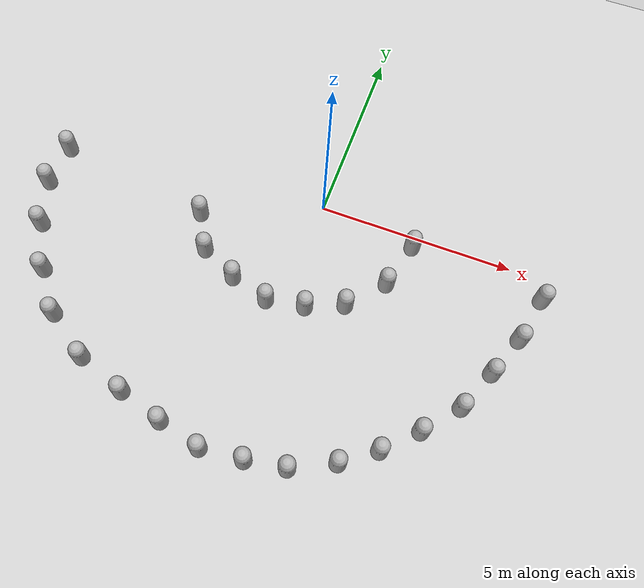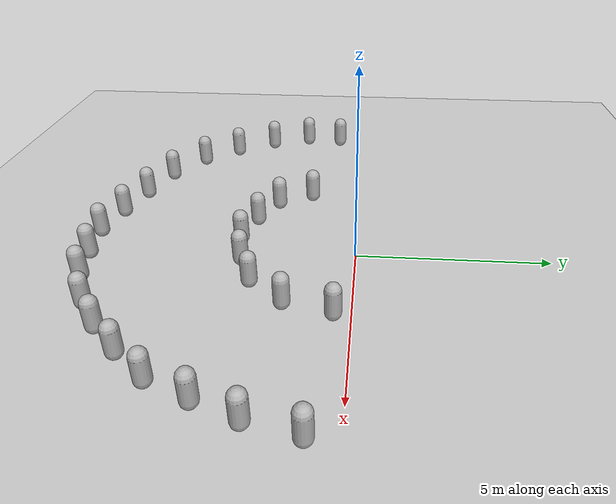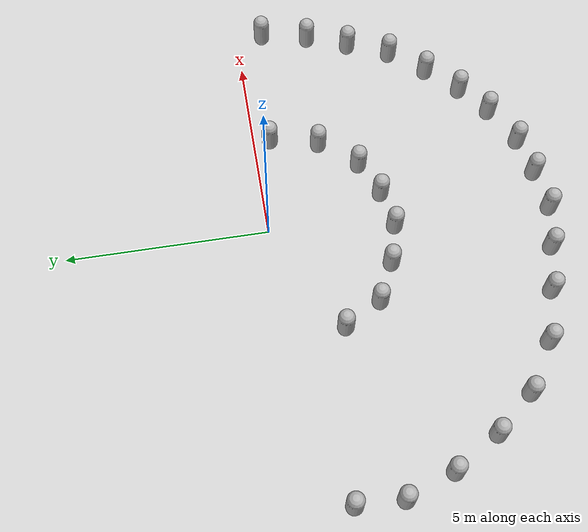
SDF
<sdf version="1.10">
 <world name="empty">
  <model name="ground_plane">
   <static>true</static>
   <link name="link">
    <collision name="collision">
     <geometry><plane><normal>0 0 1</normal><size>100 100</size></plane></geometry>
    </collision>
    <visual name="visual">
     <geometry><plane><normal>0 0 1</normal><size>100 100</size></plane></geometry>
     <material>
      <ambient>0.800000012 0.800000012 0.800000012 1</ambient>
      <diffuse>0.800000012 0.800000012 0.800000012 1</diffuse>
      <specular>0.800000012 0.800000012 0.800000012 1</specular>
     </material>
    </visual>
    <inertial>
     <mass>1</mass>
     <inertia><ixx>1</ixx><ixy>0</ixy><ixz>0</ixz><iyy>1</iyy><iyz>0</iyz><izz>1</izz></inertia>
    </inertial>
   </link>
  </model>
  <model name="capsule_7">
   <pose>2.5081237369553318 -0.40256186829092999 0.499999999902001 0 0 0</pose>
   <link name="capsule_link">
    <inertial>
     <inertia>
      <ixx>0.074153999999999998</ixx>
      <ixy>0</ixy>
      <ixz>0</ixz>
      <iyy>0.074153999999999998</iyy>
      <iyz>0</iyz>
      <izz>0.018769000000000001</izz>
     </inertia>
     <mass>1</mass>
    </inertial>
    <collision name="capsule_collision">
     <geometry>
      <capsule><radius>0.20000000000000001</radius><length>0.59999999999999998</length></capsule>
     </geometry>
    </collision>
    <visual name="capsule_visual">
     <geometry>
      <capsule><radius>0.20000000000000001</radius><length>0.59999999999999998</length></capsule>
     </geometry>
     <material>
      <ambient>0.300000012 0.300000012 0.300000012 1</ambient>
      <diffuse>0.699999988 0.699999988 0.699999988 1</diffuse>
      <specular>1 1 1 1</specular>
     </material>
    </visual>
   </link>
   <static>false</static>
  </model>
  <model name="capsule_8">
   <pose>2.2048039647659095 -1.6051857225137134 0.499999999902001 0 0 0</pose>
   <link name="capsule_link">
    <inertial>
     <inertia>
      <ixx>0.074153999999999998</ixx>
      <ixy>0</ixy>
      <ixz>0</ixz>
      <iyy>0.074153999999999998</iyy>
      <iyz>0</iyz>
      <izz>0.018769000000000001</izz>
     </inertia>
     <mass>1</mass>
    </inertial>
    <collision name="capsule_collision">
     <geometry>
      <capsule><radius>0.20000000000000001</radius><length>0.59999999999999998</length></capsule>
     </geometry>
    </collision>
    <visual name="capsule_visual">
     <geometry>
      <capsule><radius>0.20000000000000001</radius><length>0.59999999999999998</length></capsule>
     </geometry>
     <material>
      <ambient>0.300000012 0.300000012 0.300000012 1</ambient>
      <diffuse>0.699999988 0.699999988 0.699999988 1</diffuse>
      <specular>1 1 1 1</specular>
     </material>
    </visual>
   </link>
   <static>false</static>
  </model>
  <model name="capsule_9">
   <pose>1.4364847972980179 -2.5017014589598041 0.499999999902001 0 0 0</pose>
   <link name="capsule_link">
    <inertial>
     <inertia>
      <ixx>0.074153999999999998</ixx>
      <ixy>0</ixy>
      <ixz>0</ixz>
      <iyy>0.074153999999999998</iyy>
      <iyz>0</iyz>
      <izz>0.018769000000000001</izz>
     </inertia>
     <mass>1</mass>
    </inertial>
    <collision name="capsule_collision">
     <geometry>
      <capsule><radius>0.20000000000000001</radius><length>0.59999999999999998</length></capsule>
     </geometry>
    </collision>
    <visual name="capsule_visual">
     <geometry>
      <capsule><radius>0.20000000000000001</radius><length>0.59999999999999998</length></capsule>
     </geometry>
     <material>
      <ambient>0.300000012 0.300000012 0.300000012 1</ambient>
      <diffuse>0.699999988 0.699999988 0.699999988 1</diffuse>
      <specular>1 1 1 1</specular>
     </material>
    </visual>
   </link>
   <static>false</static>
  </model>
  <model name="capsule_10">
   <pose>0.52965274919056426 -2.889087828473337 0.499999999902001 0 0 0</pose>
   <link name="capsule_link">
    <inertial>
     <inertia>
      <ixx>0.074153999999999998</ixx>
      <ixy>0</ixy>
      <ixz>0</ixz>
      <iyy>0.074153999999999998</iyy>
      <iyz>0</iyz>
      <izz>0.018769000000000001</izz>
     </inertia>
     <mass>1</mass>
    </inertial>
    <collision name="capsule_collision">
     <geometry>
      <capsule><radius>0.20000000000000001</radius><length>0.59999999999999998</length></capsule>
     </geometry>
    </collision>
    <visual name="capsule_visual">
     <geometry>
      <capsule><radius>0.20000000000000001</radius><length>0.59999999999999998</length></capsule>
     </geometry>
     <material>
      <ambient>0.300000012 0.300000012 0.300000012 1</ambient>
      <diffuse>0.699999988 0.699999988 0.699999988 1</diffuse>
      <specular>1 1 1 1</specular>
     </material>
    </visual>
   </link>
   <static>false</static>
  </model>
  <model name="capsule_11">
   <pose>-0.42732762866995855 -3.0541834084289334 0.499999999902001 0 0 0</pose>
   <link name="capsule_link">
    <inertial>
     <inertia>
      <ixx>0.074153999999999998</ixx>
      <ixy>0</ixy>
      <ixz>0</ixz>
      <iyy>0.074153999999999998</iyy>
      <iyz>0</iyz>
      <izz>0.018769000000000001</izz>
     </inertia>
     <mass>1</mass>
    </inertial>
    <collision name="capsule_collision">
     <geometry>
      <capsule><radius>0.20000000000000001</radius><length>0.59999999999999998</length></capsule>
     </geometry>
    </collision>
    <visual name="capsule_visual">
     <geometry>
      <capsule><radius>0.20000000000000001</radius><length>0.59999999999999998</length></capsule>
     </geometry>
     <material>
      <ambient>0.300000012 0.300000012 0.300000012 1</ambient>
      <diffuse>0.699999988 0.699999988 0.699999988 1</diffuse>
      <specular>1 1 1 1</specular>
     </material>
    </visual>
   </link>
   <static>false</static>
  </model>
  <model name="capsule_12">
   <pose>-1.412462021727606 -2.771493541628725 0.499999999902001 0 0 0</pose>
   <link name="capsule_link">
    <inertial>
     <inertia>
      <ixx>0.074153999999999998</ixx>
      <ixy>0</ixy>
      <ixz>0</ixz>
      <iyy>0.074153999999999998</iyy>
      <iyz>0</iyz>
      <izz>0.018769000000000001</izz>
     </inertia>
     <mass>1</mass>
    </inertial>
    <collision name="capsule_collision">
     <geometry>
      <capsule><radius>0.20000000000000001</radius><length>0.59999999999999998</length></capsule>
     </geometry>
    </collision>
    <visual name="capsule_visual">
     <geometry>
      <capsule><radius>0.20000000000000001</radius><length>0.59999999999999998</length></capsule>
     </geometry>
     <material>
      <ambient>0.300000012 0.300000012 0.300000012 1</ambient>
      <diffuse>0.699999988 0.699999988 0.699999988 1</diffuse>
      <specular>1 1 1 1</specular>
     </material>
    </visual>
   </link>
   <static>false</static>
  </model>
  <model name="capsule_13">
   <pose>-2.3582422750878735 -2.3076069870458138 0.499999999902001 0 0 0</pose>
   <link name="capsule_link">
    <inertial>
     <inertia>
      <ixx>0.074153999999999998</ixx>
      <ixy>0</ixy>
      <ixz>0</ixz>
      <iyy>0.074153999999999998</iyy>
      <iyz>0</iyz>
      <izz>0.018769000000000001</izz>
     </inertia>
     <mass>1</mass>
    </inertial>
    <collision name="capsule_collision">
     <geometry>
      <capsule><radius>0.20000000000000001</radius><length>0.59999999999999998</length></capsule>
     </geometry>
    </collision>
    <visual name="capsule_visual">
     <geometry>
      <capsule><radius>0.20000000000000001</radius><length>0.59999999999999998</length></capsule>
     </geometry>
     <material>
      <ambient>0.300000012 0.300000012 0.300000012 1</ambient>
      <diffuse>0.699999988 0.699999988 0.699999988 1</diffuse>
      <specular>1 1 1 1</specular>
     </material>
    </visual>
   </link>
   <static>false</static>
  </model>
  <model name="capsule_14">
   <pose>-2.8809645542281865 -1.3882365457247086 0.499999999902001 0 0 0</pose>
   <link name="capsule_link">
    <inertial>
     <inertia>
      <ixx>0.074153999999999998</ixx>
      <ixy>0</ixy>
      <ixz>0</ixz>
      <iyy>0.074153999999999998</iyy>
      <iyz>0</iyz>
      <izz>0.018769000000000001</izz>
     </inertia>
     <mass>1</mass>
    </inertial>
    <collision name="capsule_collision">
     <geometry>
      <capsule><radius>0.20000000000000001</radius><length>0.59999999999999998</length></capsule>
     </geometry>
    </collision>
    <visual name="capsule_visual">
     <geometry>
      <capsule><radius>0.20000000000000001</radius><length>0.59999999999999998</length></capsule>
     </geometry>
     <material>
      <ambient>0.300000012 0.300000012 0.300000012 1</ambient>
      <diffuse>0.699999988 0.699999988 0.699999988 1</diffuse>
      <specular>1 1 1 1</specular>
     </material>
    </visual>
   </link>
   <static>false</static>
  </model>
  <model name="capsule_15">
   <pose>-0.52190809012316919 -6.9308206823025076 0.499999999902001 0 0 0</pose>
   <link name="capsule_link">
    <inertial>
     <inertia>
      <ixx>0.074153999999999998</ixx>
      <ixy>0</ixy>
      <ixz>0</ixz>
      <iyy>0.074153999999999998</iyy>
      <iyz>0</iyz>
      <izz>0.018769000000000001</izz>
     </inertia>
     <mass>1</mass>
    </inertial>
    <collision name="capsule_collision">
     <geometry>
      <capsule><radius>0.20000000000000001</radius><length>0.59999999999999998</length></capsule>
     </geometry>
    </collision>
    <visual name="capsule_visual">
     <geometry>
      <capsule><radius>0.20000000000000001</radius><length>0.59999999999999998</length></capsule>
     </geometry>
     <material>
      <ambient>0.300000012 0.300000012 0.300000012 1</ambient>
      <diffuse>0.699999988 0.699999988 0.699999988 1</diffuse>
      <specular>1 1 1 1</specular>
     </material>
    </visual>
   </link>
   <static>false</static>
  </model>
  <model name="capsule_16">
   <pose>0.5242768551353354 -6.8207512376048962 0.499999999902001 0 0 0</pose>
   <link name="capsule_link">
    <inertial>
     <inertia>
      <ixx>0.074153999999999998</ixx>
      <ixy>0</ixy>
      <ixz>0</ixz>
      <iyy>0.074153999999999998</iyy>
      <iyz>0</iyz>
      <izz>0.018769000000000001</izz>
     </inertia>
     <mass>1</mass>
    </inertial>
    <collision name="capsule_collision">
     <geometry>
      <capsule><radius>0.20000000000000001</radius><length>0.59999999999999998</length></capsule>
     </geometry>
    </collision>
    <visual name="capsule_visual">
     <geometry>
      <capsule><radius>0.20000000000000001</radius><length>0.59999999999999998</length></capsule>
     </geometry>
     <material>
      <ambient>0.300000012 0.300000012 0.300000012 1</ambient>
      <diffuse>0.699999988 0.699999988 0.699999988 1</diffuse>
      <specular>1 1 1 1</specular>
     </material>
    </visual>
   </link>
   <static>false</static>
  </model>
  <model name="capsule_17">
   <pose>1.4986333872438493 -6.6472010452156054 0.499999999902001 0 0 0</pose>
   <link name="capsule_link">
    <inertial>
     <inertia>
      <ixx>0.074153999999999998</ixx>
      <ixy>0</ixy>
      <ixz>0</ixz>
      <iyy>0.074153999999999998</iyy>
      <iyz>0</iyz>
      <izz>0.018769000000000001</izz>
     </inertia>
     <mass>1</mass>
    </inertial>
    <collision name="capsule_collision">
     <geometry>
      <capsule><radius>0.20000000000000001</radius><length>0.59999999999999998</length></capsule>
     </geometry>
    </collision>
    <visual name="capsule_visual">
     <geometry>
      <capsule><radius>0.20000000000000001</radius><length>0.59999999999999998</length></capsule>
     </geometry>
     <material>
      <ambient>0.300000012 0.300000012 0.300000012 1</ambient>
      <diffuse>0.699999988 0.699999988 0.699999988 1</diffuse>
      <specular>1 1 1 1</specular>
     </material>
    </visual>
   </link>
   <static>false</static>
  </model>
  <model name="capsule_18">
   <pose>2.5117566383249121 -6.1404921635000269 0.499999999902001 0 0 0</pose>
   <link name="capsule_link">
    <inertial>
     <inertia>
      <ixx>0.074153999999999998</ixx>
      <ixy>0</ixy>
      <ixz>0</ixz>
      <iyy>0.074153999999999998</iyy>
      <iyz>0</iyz>
      <izz>0.018769000000000001</izz>
     </inertia>
     <mass>1</mass>
    </inertial>
    <collision name="capsule_collision">
     <geometry>
      <capsule><radius>0.20000000000000001</radius><length>0.59999999999999998</length></capsule>
     </geometry>
    </collision>
    <visual name="capsule_visual">
     <geometry>
      <capsule><radius>0.20000000000000001</radius><length>0.59999999999999998</length></capsule>
     </geometry>
     <material>
      <ambient>0.300000012 0.300000012 0.300000012 1</ambient>
      <diffuse>0.699999988 0.699999988 0.699999988 1</diffuse>
      <specular>1 1 1 1</specular>
     </material>
    </visual>
   </link>
   <static>false</static>
  </model>
  <model name="capsule_19">
   <pose>-1.5973082557714307 -6.6819365596943676 0.499999999902001 0 0 0</pose>
   <link name="capsule_link">
    <inertial>
     <inertia>
      <ixx>0.074153999999999998</ixx>
      <ixy>0</ixy>
      <ixz>0</ixz>
      <iyy>0.074153999999999998</iyy>
      <iyz>0</iyz>
      <izz>0.018769000000000001</izz>
     </inertia>
     <mass>1</mass>
    </inertial>
    <collision name="capsule_collision">
     <geometry>
      <capsule><radius>0.20000000000000001</radius><length>0.59999999999999998</length></capsule>
     </geometry>
    </collision>
    <visual name="capsule_visual">
     <geometry>
      <capsule><radius>0.20000000000000001</radius><length>0.59999999999999998</length></capsule>
     </geometry>
     <material>
      <ambient>0.300000012 0.300000012 0.300000012 1</ambient>
      <diffuse>0.699999988 0.699999988 0.699999988 1</diffuse>
      <specular>1 1 1 1</specular>
     </material>
    </visual>
   </link>
   <static>false</static>
  </model>
  <model name="capsule_20">
   <pose>-2.7239246104988029 -6.3645904060277978 0.499999999902001 0 0 0</pose>
   <link name="capsule_link">
    <inertial>
     <inertia>
      <ixx>0.074153999999999998</ixx>
      <ixy>0</ixy>
      <ixz>0</ixz>
      <iyy>0.074153999999999998</iyy>
      <iyz>0</iyz>
      <izz>0.018769000000000001</izz>
     </inertia>
     <mass>1</mass>
    </inertial>
    <collision name="capsule_collision">
     <geometry>
      <capsule><radius>0.20000000000000001</radius><length>0.59999999999999998</length></capsule>
     </geometry>
    </collision>
    <visual name="capsule_visual">
     <geometry>
      <capsule><radius>0.20000000000000001</radius><length>0.59999999999999998</length></capsule>
     </geometry>
     <material>
      <ambient>0.300000012 0.300000012 0.300000012 1</ambient>
      <diffuse>0.699999988 0.699999988 0.699999988 1</diffuse>
      <specular>1 1 1 1</specular>
     </material>
    </visual>
   </link>
   <static>false</static>
  </model>
  <model name="capsule_21">
   <pose>-3.9697708528088875 -5.9554399215768026 0.499999999902001 0 0 0</pose>
   <link name="capsule_link">
    <inertial>
     <inertia>
      <ixx>0.074153999999999998</ixx>
      <ixy>0</ixy>
      <ixz>0</ixz>
      <iyy>0.074153999999999998</iyy>
      <iyz>0</iyz>
      <izz>0.018769000000000001</izz>
     </inertia>
     <mass>1</mass>
    </inertial>
    <collision name="capsule_collision">
     <geometry>
      <capsule><radius>0.20000000000000001</radius><length>0.59999999999999998</length></capsule>
     </geometry>
    </collision>
    <visual name="capsule_visual">
     <geometry>
      <capsule><radius>0.20000000000000001</radius><length>0.59999999999999998</length></capsule>
     </geometry>
     <material>
      <ambient>0.300000012 0.300000012 0.300000012 1</ambient>
      <diffuse>0.699999988 0.699999988 0.699999988 1</diffuse>
      <specular>1 1 1 1</specular>
     </material>
    </visual>
   </link>
   <static>false</static>
  </model>
  <model name="capsule_22">
   <pose>-5.111247680605663 -5.2050282603639122 0.499999999902001 0 0 0</pose>
   <link name="capsule_link">
    <inertial>
     <inertia>
      <ixx>0.074153999999999998</ixx>
      <ixy>0</ixy>
      <ixz>0</ixz>
      <iyy>0.074153999999999998</iyy>
      <iyz>0</iyz>
      <izz>0.018769000000000001</izz>
     </inertia>
     <mass>1</mass>
    </inertial>
    <collision name="capsule_collision">
     <geometry>
      <capsule><radius>0.20000000000000001</radius><length>0.59999999999999998</length></capsule>
     </geometry>
    </collision>
    <visual name="capsule_visual">
     <geometry>
      <capsule><radius>0.20000000000000001</radius><length>0.59999999999999998</length></capsule>
     </geometry>
     <material>
      <ambient>0.300000012 0.300000012 0.300000012 1</ambient>
      <diffuse>0.699999988 0.699999988 0.699999988 1</diffuse>
      <specular>1 1 1 1</specular>
     </material>
    </visual>
   </link>
   <static>false</static>
  </model>
  <model name="capsule_23">
   <pose>-5.91600440430057 -4.2410612859261612 0.499999999902001 0 0 0</pose>
   <link name="capsule_link">
    <inertial>
     <inertia>
      <ixx>0.074153999999999998</ixx>
      <ixy>0</ixy>
      <ixz>0</ixz>
      <iyy>0.074153999999999998</iyy>
      <iyz>0</iyz>
      <izz>0.018769000000000001</izz>
     </inertia>
     <mass>1</mass>
    </inertial>
    <collision name="capsule_collision">
     <geometry>
      <capsule><radius>0.20000000000000001</radius><length>0.59999999999999998</length></capsule>
     </geometry>
    </collision>
    <visual name="capsule_visual">
     <geometry>
      <capsule><radius>0.20000000000000001</radius><length>0.59999999999999998</length></capsule>
     </geometry>
     <material>
      <ambient>0.300000012 0.300000012 0.300000012 1</ambient>
      <diffuse>0.699999988 0.699999988 0.699999988 1</diffuse>
      <specular>1 1 1 1</specular>
     </material>
    </visual>
   </link>
   <static>false</static>
  </model>
  <model name="capsule_24">
   <pose>-6.5848813897281131 -3.1125606925663143 0.499999999902001 0 0 0</pose>
   <link name="capsule_link">
    <inertial>
     <inertia>
      <ixx>0.074153999999999998</ixx>
      <ixy>0</ixy>
      <ixz>0</ixz>
      <iyy>0.074153999999999998</iyy>
      <iyz>0</iyz>
      <izz>0.018769000000000001</izz>
     </inertia>
     <mass>1</mass>
    </inertial>
    <collision name="capsule_collision">
     <geometry>
      <capsule><radius>0.20000000000000001</radius><length>0.59999999999999998</length></capsule>
     </geometry>
    </collision>
    <visual name="capsule_visual">
     <geometry>
      <capsule><radius>0.20000000000000001</radius><length>0.59999999999999998</length></capsule>
     </geometry>
     <material>
      <ambient>0.300000012 0.300000012 0.300000012 1</ambient>
      <diffuse>0.699999988 0.699999988 0.699999988 1</diffuse>
      <specular>1 1 1 1</specular>
     </material>
    </visual>
   </link>
   <static>false</static>
  </model>
  <model name="capsule_25">
   <pose>3.2987848128661099 -5.5489754287186059 0.499999999902001 0 0 0</pose>
   <link name="capsule_link">
    <inertial>
     <inertia>
      <ixx>0.074153999999999998</ixx>
      <ixy>0</ixy>
      <ixz>0</ixz>
      <iyy>0.074153999999999998</iyy>
      <iyz>0</iyz>
      <izz>0.018769000000000001</izz>
     </inertia>
     <mass>1</mass>
    </inertial>
    <collision name="capsule_collision">
     <geometry>
      <capsule><radius>0.20000000000000001</radius><length>0.59999999999999998</length></capsule>
     </geometry>
    </collision>
    <visual name="capsule_visual">
     <geometry>
      <capsule><radius>0.20000000000000001</radius><length>0.59999999999999998</length></capsule>
     </geometry>
     <material>
      <ambient>0.300000012 0.300000012 0.300000012 1</ambient>
      <diffuse>0.699999988 0.699999988 0.699999988 1</diffuse>
      <specular>1 1 1 1</specular>
     </material>
    </visual>
   </link>
   <static>false</static>
  </model>
  <model name="capsule_26">
   <pose>4.040166005629632 -4.8067816154089931 0.499999999902001 0 0 0</pose>
   <link name="capsule_link">
    <inertial>
     <inertia>
      <ixx>0.074153999999999998</ixx>
      <ixy>0</ixy>
      <ixz>0</ixz>
      <iyy>0.074153999999999998</iyy>
      <iyz>0</iyz>
      <izz>0.018769000000000001</izz>
     </inertia>
     <mass>1</mass>
    </inertial>
    <collision name="capsule_collision">
     <geometry>
      <capsule><radius>0.20000000000000001</radius><length>0.59999999999999998</length></capsule>
     </geometry>
    </collision>
    <visual name="capsule_visual">
     <geometry>
      <capsule><radius>0.20000000000000001</radius><length>0.59999999999999998</length></capsule>
     </geometry>
     <material>
      <ambient>0.300000012 0.300000012 0.300000012 1</ambient>
      <diffuse>0.699999988 0.699999988 0.699999988 1</diffuse>
      <specular>1 1 1 1</specular>
     </material>
    </visual>
   </link>
   <static>false</static>
  </model>
  <model name="capsule_27">
   <pose>4.7551436424648346 -3.9560395415173168 0.499999999902001 0 0 0</pose>
   <link name="capsule_link">
    <inertial>
     <inertia>
      <ixx>0.074153999999999998</ixx>
      <ixy>0</ixy>
      <ixz>0</ixz>
      <iyy>0.074153999999999998</iyy>
      <iyz>0</iyz>
      <izz>0.018769000000000001</izz>
     </inertia>
     <mass>1</mass>
    </inertial>
    <collision name="capsule_collision">
     <geometry>
      <capsule><radius>0.20000000000000001</radius><length>0.59999999999999998</length></capsule>
     </geometry>
    </collision>
    <visual name="capsule_visual">
     <geometry>
      <capsule><radius>0.20000000000000001</radius><length>0.59999999999999998</length></capsule>
     </geometry>
     <material>
      <ambient>0.300000012 0.300000012 0.300000012 1</ambient>
      <diffuse>0.699999988 0.699999988 0.699999988 1</diffuse>
      <specular>1 1 1 1</specular>
     </material>
    </visual>
   </link>
   <static>false</static>
  </model>
  <model name="capsule_28">
   <pose>-7.00485357911435 -1.9340113830864105 0.499999999902001 0 0 0</pose>
   <link name="capsule_link">
    <inertial>
     <inertia>
      <ixx>0.074153999999999998</ixx>
      <ixy>0</ixy>
      <ixz>0</ixz>
      <iyy>0.074153999999999998</iyy>
      <iyz>0</iyz>
      <izz>0.018769000000000001</izz>
     </inertia>
     <mass>1</mass>
    </inertial>
    <collision name="capsule_collision">
     <geometry>
      <capsule><radius>0.20000000000000001</radius><length>0.59999999999999998</length></capsule>
     </geometry>
    </collision>
    <visual name="capsule_visual">
     <geometry>
      <capsule><radius>0.20000000000000001</radius><length>0.59999999999999998</length></capsule>
     </geometry>
     <material>
      <ambient>0.300000012 0.300000012 0.300000012 1</ambient>
      <diffuse>0.699999988 0.699999988 0.699999988 1</diffuse>
      <specular>1 1 1 1</specular>
     </material>
    </visual>
   </link>
   <static>false</static>
  </model>
  <model name="capsule_29">
   <pose>-6.9635475099467419 -0.81928844198721307 0.499999999902001 0 0 0</pose>
   <link name="capsule_link">
    <inertial>
     <inertia>
      <ixx>0.074153999999999998</ixx>
      <ixy>0</ixy>
      <ixz>0</ixz>
      <iyy>0.074153999999999998</iyy>
      <iyz>0</iyz>
      <izz>0.018769000000000001</izz>
     </inertia>
     <mass>1</mass>
    </inertial>
    <collision name="capsule_collision">
     <geometry>
      <capsule><radius>0.20000000000000001</radius><length>0.59999999999999998</length></capsule>
     </geometry>
    </collision>
    <visual name="capsule_visual">
     <geometry>
      <capsule><radius>0.20000000000000001</radius><length>0.59999999999999998</length></capsule>
     </geometry>
     <material>
      <ambient>0.300000012 0.300000012 0.300000012 1</ambient>
      <diffuse>0.699999988 0.699999988 0.699999988 1</diffuse>
      <specular>1 1 1 1</specular>
     </material>
    </visual>
   </link>
   <static>false</static>
  </model>
  <model name="capsule_32">
   <pose>5.2071031839802995 -2.9123015119113269 0.499999999902001 0 0 0</pose>
   <link name="capsule_link">
    <inertial>
     <inertia>
      <ixx>0.074153999999999998</ixx>
      <ixy>0</ixy>
      <ixz>0</ixz>
      <iyy>0.074153999999999998</iyy>
      <iyz>0</iyz>
      <izz>0.018769000000000001</izz>
     </inertia>
     <mass>1</mass>
    </inertial>
    <collision name="capsule_collision">
     <geometry>
      <capsule><radius>0.20000000000000001</radius><length>0.59999999999999998</length></capsule>
     </geometry>
    </collision>
    <visual name="capsule_visual">
     <geometry>
      <capsule><radius>0.20000000000000001</radius><length>0.59999999999999998</length></capsule>
     </geometry>
     <material>
      <ambient>0.300000012 0.300000012 0.300000012 1</ambient>
      <diffuse>0.699999988 0.699999988 0.699999988 1</diffuse>
      <specular>1 1 1 1</specular>
     </material>
    </visual>
   </link>
   <static>false</static>
  </model>
  <model name="capsule_33">
   <pose>5.6148601912423146 -1.8713702481092578 0.499999999902001 0 0 0</pose>
   <link name="capsule_link">
    <inertial>
     <inertia>
      <ixx>0.074153999999999998</ixx>
      <ixy>0</ixy>
      <ixz>0</ixz>
      <iyy>0.074153999999999998</iyy>
      <iyz>0</iyz>
      <izz>0.018769000000000001</izz>
     </inertia>
     <mass>1</mass>
    </inertial>
    <collision name="capsule_collision">
     <geometry>
      <capsule><radius>0.20000000000000001</radius><length>0.59999999999999998</length></capsule>
     </geometry>
    </collision>
    <visual name="capsule_visual">
     <geometry>
      <capsule><radius>0.20000000000000001</radius><length>0.59999999999999998</length></capsule>
     </geometry>
     <material>
      <ambient>0.300000012 0.300000012 0.300000012 1</ambient>
      <diffuse>0.699999988 0.699999988 0.699999988 1</diffuse>
      <specular>1 1 1 1</specular>
     </material>
    </visual>
   </link>
   <static>false</static>
  </model>
  <model name="capsule_34">
   <pose>5.8906834013836322 -0.67854692954376628 0.499999999902001 0 0 0</pose>
   <link name="capsule_link">
    <inertial>
     <inertia>
      <ixx>0.074153999999999998</ixx>
      <ixy>0</ixy>
      <ixz>0</ixz>
      <iyy>0.074153999999999998</iyy>
      <iyz>0</iyz>
      <izz>0.018769000000000001</izz>
     </inertia>
     <mass>1</mass>
    </inertial>
    <collision name="capsule_collision">
     <geometry>
      <capsule><radius>0.20000000000000001</radius><length>0.59999999999999998</length></capsule>
     </geometry>
    </collision>
    <visual name="capsule_visual">
     <geometry>
      <capsule><radius>0.20000000000000001</radius><length>0.59999999999999998</length></capsule>
     </geometry>
     <material>
      <ambient>0.300000012 0.300000012 0.300000012 1</ambient>
      <diffuse>0.699999988 0.699999988 0.699999988 1</diffuse>
      <specular>1 1 1 1</specular>
     </material>
    </visual>
   </link>
   <static>false</static>
  </model>
 </world>
</sdf>
